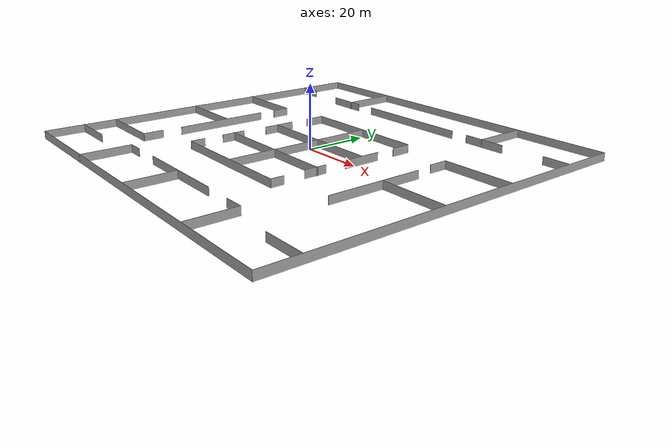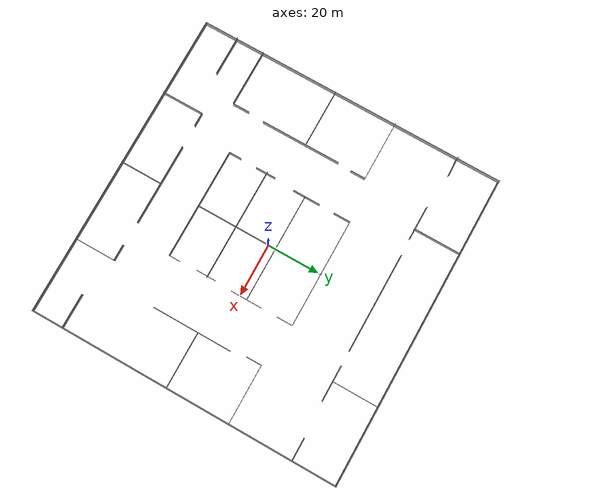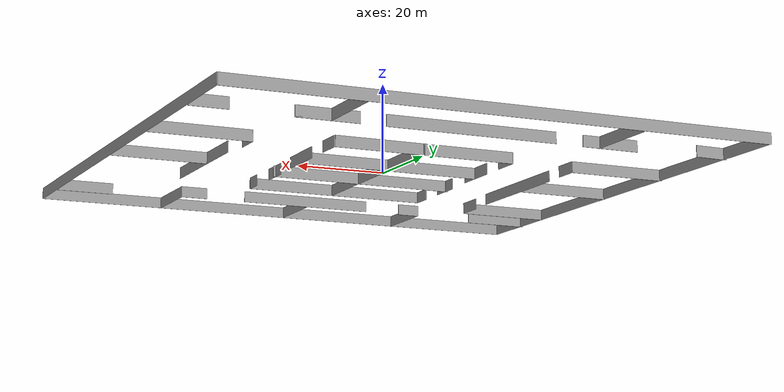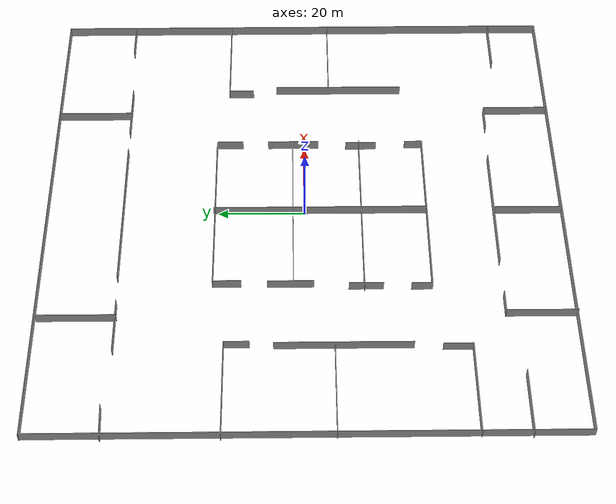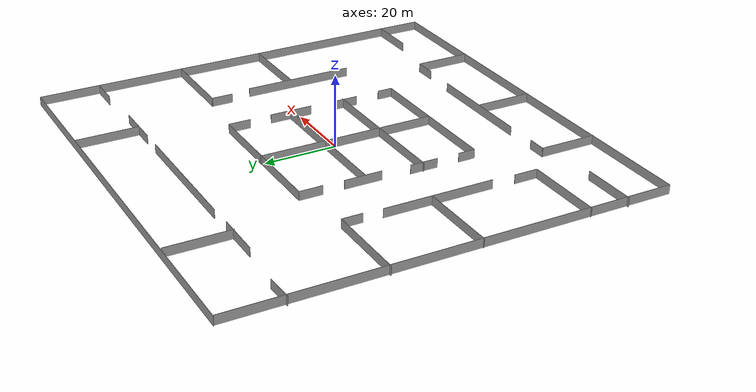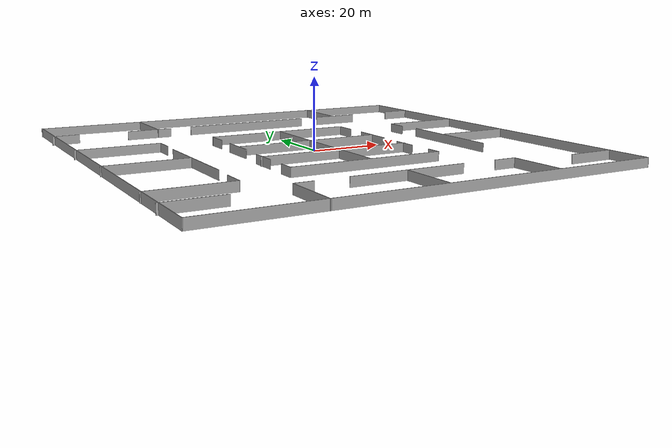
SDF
<?xml version='1.0'?>
<sdf version='1.6'>
  <model name='model'>
    <pose frame=''>-0.123457 -0.043402 0 0 -0 0</pose>
    <link name='Wall_0'>
      <collision name='Wall_0_Collision'>
        <geometry>
          <box>
            <size>119.25 0.15 2.5</size>
          </box>
        </geometry>
        <pose frame=''>0 0 1.25 0 -0 0</pose>
      </collision>
      <visual name='Wall_0_Visual'>
        <pose frame=''>0 0 1.25 0 -0 0</pose>
        <geometry>
          <box>
            <size>119.25 0.15 2.5</size>
          </box>
        </geometry>
        <material>
          <script>
            <uri>file://media/materials/scripts/gazebo.material</uri>
            <name>Gazebo/Grey</name>
          </script>
          <ambient>1 1 1 1</ambient>
        </material>
      </visual>
      <pose frame=''>-59.3614 0.107463 0 0 0 -1.5708</pose>
    </link>
    <link name='Wall_1'>
      <collision name='Wall_1_Collision'>
        <geometry>
          <box>
            <size>119.5 0.15 2.5</size>
          </box>
        </geometry>
        <pose frame=''>0 0 1.25 0 -0 0</pose>
      </collision>
      <visual name='Wall_1_Visual'>
        <pose frame=''>0 0 1.25 0 -0 0</pose>
        <geometry>
          <box>
            <size>119.5 0.15 2.5</size>
          </box>
        </geometry>
        <material>
          <script>
            <uri>file://media/materials/scripts/gazebo.material</uri>
            <name>Gazebo/Grey</name>
          </script>
          <ambient>1 1 1 1</ambient>
        </material>
      </visual>
      <pose frame=''>0.313632 -59.4425 0 0 -0 0</pose>
    </link>
    <link name='Wall_10'>
      <collision name='Wall_10_Collision'>
        <geometry>
          <box>
            <size>4.25 0.15 2.5</size>
          </box>
        </geometry>
        <pose frame=''>0 0 1.25 0 -0 0</pose>
      </collision>
      <visual name='Wall_10_Visual'>
        <pose frame=''>0 0 1.25 0 -0 0</pose>
        <geometry>
          <box>
            <size>4.25 0.15 2.5</size>
          </box>
        </geometry>
        <material>
          <script>
            <uri>file://media/materials/scripts/gazebo.material</uri>
            <name>Gazebo/Grey</name>
          </script>
          <ambient>1 1 1 1</ambient>
        </material>
      </visual>
      <pose frame=''>20.3445 -26.0989 0 0 -0 1.5708</pose>
    </link>
    <link name='Wall_12'>
      <collision name='Wall_12_Collision'>
        <geometry>
          <box>
            <size>42.762 0.15 2.5</size>
          </box>
        </geometry>
        <pose frame=''>0 0 1.25 0 -0 0</pose>
      </collision>
      <visual name='Wall_12_Visual'>
        <pose frame=''>0 0 1.25 0 -0 0</pose>
        <geometry>
          <box>
            <size>42.762 0.15 2.5</size>
          </box>
        </geometry>
        <material>
          <script>
            <uri>file://media/materials/scripts/gazebo.material</uri>
            <name>Gazebo/Grey</name>
          </script>
          <ambient>1 1 1 1</ambient>
        </material>
      </visual>
      <pose frame=''>-0.756543 -13.0266 0 0 -0 0</pose>
    </link>
    <link name='Wall_14'>
      <collision name='Wall_14_Collision'>
        <geometry>
          <box>
            <size>7.75 0.15 2.5</size>
          </box>
        </geometry>
        <pose frame=''>0 0 1.25 0 -0 0</pose>
      </collision>
      <visual name='Wall_14_Visual'>
        <pose frame=''>0 0 1.25 0 -0 0</pose>
        <geometry>
          <box>
            <size>7.75 0.15 2.5</size>
          </box>
        </geometry>
        <material>
          <script>
            <uri>file://media/materials/scripts/gazebo.material</uri>
            <name>Gazebo/Grey</name>
          </script>
          <ambient>1 1 1 1</ambient>
        </material>
      </visual>
      <pose frame=''>-21.6217 -13.4008 0 0 0 -1.5708</pose>
    </link>
    <link name='Wall_16'>
      <collision name='Wall_16_Collision'>
        <geometry>
          <box>
            <size>7.25 0.15 2.5</size>
          </box>
        </geometry>
        <pose frame=''>0 0 1.25 0 -0 0</pose>
      </collision>
      <visual name='Wall_16_Visual'>
        <pose frame=''>0 0 1.25 0 -0 0</pose>
        <geometry>
          <box>
            <size>7.25 0.15 2.5</size>
          </box>
        </geometry>
        <material>
          <script>
            <uri>file://media/materials/scripts/gazebo.material</uri>
            <name>Gazebo/Grey</name>
          </script>
          <ambient>1 1 1 1</ambient>
        </material>
      </visual>
      <pose frame=''>20.1003 -13.5026 0 0 0 -1.5708</pose>
    </link>
    <link name='Wall_19'>
      <collision name='Wall_19_Collision'>
        <geometry>
          <box>
            <size>41.432 0.15 2.5</size>
          </box>
        </geometry>
        <pose frame=''>0 0 1.25 0 -0 0</pose>
      </collision>
      <visual name='Wall_19_Visual'>
        <pose frame=''>0 0 1.25 0 -0 0</pose>
        <geometry>
          <box>
            <size>41.432 0.15 2.5</size>
          </box>
        </geometry>
        <material>
          <script>
            <uri>file://media/materials/scripts/gazebo.material</uri>
            <name>Gazebo/Grey</name>
          </script>
          <ambient>1 1 1 1</ambient>
        </material>
      </visual>
      <pose frame=''>-0.235543 2.8384 0 0 -0 3.14159</pose>
    </link>
    <link name='Wall_2'>
      <collision name='Wall_2_Collision'>
        <geometry>
          <box>
            <size>119.25 0.15 2.5</size>
          </box>
        </geometry>
        <pose frame=''>0 0 1.25 0 -0 0</pose>
      </collision>
      <visual name='Wall_2_Visual'>
        <pose frame=''>0 0 1.25 0 -0 0</pose>
        <geometry>
          <box>
            <size>119.25 0.15 2.5</size>
          </box>
        </geometry>
        <material>
          <script>
            <uri>file://media/materials/scripts/gazebo.material</uri>
            <name>Gazebo/Grey</name>
          </script>
          <ambient>1 1 1 1</ambient>
        </material>
      </visual>
      <pose frame=''>59.9886 0.107463 0 0 -0 1.5708</pose>
    </link>
    <link name='Wall_21'>
      <collision name='Wall_21_Collision'>
        <geometry>
          <box>
            <size>10.5 0.15 2.5</size>
          </box>
        </geometry>
        <pose frame=''>0 0 1.25 0 -0 0</pose>
      </collision>
      <visual name='Wall_21_Visual'>
        <pose frame=''>0 0 1.25 0 -0 0</pose>
        <geometry>
          <box>
            <size>10.5 0.15 2.5</size>
          </box>
        </geometry>
        <material>
          <script>
            <uri>file://media/materials/scripts/gazebo.material</uri>
            <name>Gazebo/Grey</name>
          </script>
          <ambient>1 1 1 1</ambient>
        </material>
      </visual>
      <pose frame=''>-20.9646 3.43311 0 0 0 -1.5708</pose>
    </link>
    <link name='Wall_23'>
      <collision name='Wall_23_Collision'>
        <geometry>
          <box>
            <size>12 0.15 2.5</size>
          </box>
        </geometry>
        <pose frame=''>0 0 1.25 0 -0 0</pose>
      </collision>
      <visual name='Wall_23_Visual'>
        <pose frame=''>0 0 1.25 0 -0 0</pose>
        <geometry>
          <box>
            <size>12 0.15 2.5</size>
          </box>
        </geometry>
        <material>
          <script>
            <uri>file://media/materials/scripts/gazebo.material</uri>
            <name>Gazebo/Grey</name>
          </script>
          <ambient>1 1 1 1</ambient>
        </material>
      </visual>
      <pose frame=''>20.4759 2.68311 0 0 0 -1.5708</pose>
    </link>
    <link name='Wall_25'>
      <collision name='Wall_25_Collision'>
        <geometry>
          <box>
            <size>41.268 0.15 2.5</size>
          </box>
        </geometry>
        <pose frame=''>0 0 1.25 0 -0 0</pose>
      </collision>
      <visual name='Wall_25_Visual'>
        <pose frame=''>0 0 1.25 0 -0 0</pose>
        <geometry>
          <box>
            <size>41.268 0.15 2.5</size>
          </box>
        </geometry>
        <material>
          <script>
            <uri>file://media/materials/scripts/gazebo.material</uri>
            <name>Gazebo/Grey</name>
          </script>
          <ambient>1 1 1 1</ambient>
        </material>
      </visual>
      <pose frame=''>-0.262543 20.9014 0 0 -0 0</pose>
    </link>
    <link name='Wall_27'>
      <collision name='Wall_27_Collision'>
        <geometry>
          <box>
            <size>6 0.15 2.5</size>
          </box>
        </geometry>
        <pose frame=''>0 0 1.25 0 -0 0</pose>
      </collision>
      <visual name='Wall_27_Visual'>
        <pose frame=''>0 0 1.25 0 -0 0</pose>
        <geometry>
          <box>
            <size>6 0.15 2.5</size>
          </box>
        </geometry>
        <material>
          <script>
            <uri>file://media/materials/scripts/gazebo.material</uri>
            <name>Gazebo/Grey</name>
          </script>
          <ambient>1 1 1 1</ambient>
        </material>
      </visual>
      <pose frame=''>20.4784 17.6949 0 0 0 -1.5708</pose>
    </link>
    <link name='Wall_3'>
      <collision name='Wall_3_Collision'>
        <geometry>
          <box>
            <size>119.75 0.15 2.5</size>
          </box>
        </geometry>
        <pose frame=''>0 0 1.25 0 -0 0</pose>
      </collision>
      <visual name='Wall_3_Visual'>
        <pose frame=''>0 0 1.25 0 -0 0</pose>
        <geometry>
          <box>
            <size>119.75 0.15 2.5</size>
          </box>
        </geometry>
        <material>
          <script>
            <uri>file://media/materials/scripts/gazebo.material</uri>
            <name>Gazebo/Grey</name>
          </script>
          <ambient>1 1 1 1</ambient>
        </material>
      </visual>
      <pose frame=''>0.188632 59.6575 0 0 -0 3.14159</pose>
    </link>
    <link name='Wall_30'>
      <collision name='Wall_30_Collision'>
        <geometry>
          <box>
            <size>6.5 0.15 2.5</size>
          </box>
        </geometry>
        <pose frame=''>0 0 1.25 0 -0 0</pose>
      </collision>
      <visual name='Wall_30_Visual'>
        <pose frame=''>0 0 1.25 0 -0 0</pose>
        <geometry>
          <box>
            <size>6.5 0.15 2.5</size>
          </box>
        </geometry>
        <material>
          <script>
            <uri>file://media/materials/scripts/gazebo.material</uri>
            <name>Gazebo/Grey</name>
          </script>
          <ambient>1 1 1 1</ambient>
        </material>
      </visual>
      <pose frame=''>-20.8215 17.7264 0 0 0 -1.5708</pose>
    </link>
    <link name='Wall_33'>
      <collision name='Wall_33_Collision'>
        <geometry>
          <box>
            <size>23 0.15 2.5</size>
          </box>
        </geometry>
        <pose frame=''>0 0 1.25 0 -0 0</pose>
      </collision>
      <visual name='Wall_33_Visual'>
        <pose frame=''>0 0 1.25 0 -0 0</pose>
        <geometry>
          <box>
            <size>23 0.15 2.5</size>
          </box>
        </geometry>
        <material>
          <script>
            <uri>file://media/materials/scripts/gazebo.material</uri>
            <name>Gazebo/Grey</name>
          </script>
          <ambient>1 1 1 1</ambient>
        </material>
      </visual>
      <pose frame=''>-48.4422 18.0663 0 0 -0 0</pose>
    </link>
    <link name='Wall_34'>
      <collision name='Wall_34_Collision'>
        <geometry>
          <box>
            <size>5.75 0.15 2.5</size>
          </box>
        </geometry>
        <pose frame=''>0 0 1.25 0 -0 0</pose>
      </collision>
      <visual name='Wall_34_Visual'>
        <pose frame=''>0 0 1.25 0 -0 0</pose>
        <geometry>
          <box>
            <size>5.75 0.15 2.5</size>
          </box>
        </geometry>
        <material>
          <script>
            <uri>file://media/materials/scripts/gazebo.material</uri>
            <name>Gazebo/Grey</name>
          </script>
          <ambient>1 1 1 1</ambient>
        </material>
      </visual>
      <pose frame=''>-37.0172 15.2663 0 0 0 -1.5708</pose>
    </link>
    <link name='Wall_36'>
      <collision name='Wall_36_Collision'>
        <geometry>
          <box>
            <size>22.25 0.15 2.5</size>
          </box>
        </geometry>
        <pose frame=''>0 0 1.25 0 -0 0</pose>
      </collision>
      <visual name='Wall_36_Visual'>
        <pose frame=''>0 0 1.25 0 -0 0</pose>
        <geometry>
          <box>
            <size>22.25 0.15 2.5</size>
          </box>
        </geometry>
        <material>
          <script>
            <uri>file://media/materials/scripts/gazebo.material</uri>
            <name>Gazebo/Grey</name>
          </script>
          <ambient>1 1 1 1</ambient>
        </material>
      </visual>
      <pose frame=''>-48.5697 -6.10432 0 0 -0 0</pose>
    </link>
    <link name='Wall_38'>
      <collision name='Wall_38_Collision'>
        <geometry>
          <box>
            <size>30.5 0.15 2.5</size>
          </box>
        </geometry>
        <pose frame=''>0 0 1.25 0 -0 0</pose>
      </collision>
      <visual name='Wall_38_Visual'>
        <pose frame=''>0 0 1.25 0 -0 0</pose>
        <geometry>
          <box>
            <size>30.5 0.15 2.5</size>
          </box>
        </geometry>
        <material>
          <script>
            <uri>file://media/materials/scripts/gazebo.material</uri>
            <name>Gazebo/Grey</name>
          </script>
          <ambient>1 1 1 1</ambient>
        </material>
      </visual>
      <pose frame=''>-37.3691 -8.00989 0 0 0 -1.5708</pose>
    </link>
    <link name='Wall_43'>
      <collision name='Wall_43_Collision'>
        <geometry>
          <box>
            <size>15.25 0.15 2.5</size>
          </box>
        </geometry>
        <pose frame=''>0 0 1.25 0 -0 0</pose>
      </collision>
      <visual name='Wall_43_Visual'>
        <pose frame=''>0 0 1.25 0 -0 0</pose>
        <geometry>
          <box>
            <size>15.25 0.15 2.5</size>
          </box>
        </geometry>
        <material>
          <script>
            <uri>file://media/materials/scripts/gazebo.material</uri>
            <name>Gazebo/Grey</name>
          </script>
          <ambient>1 1 1 1</ambient>
        </material>
      </visual>
      <pose frame=''>-52.3124 -46.7217 0 0 -0 0</pose>
    </link>
    <link name='Wall_46'>
      <collision name='Wall_46_Collision'>
        <geometry>
          <box>
            <size>21.75 0.15 2.5</size>
          </box>
        </geometry>
        <pose frame=''>0 0 1.25 0 -0 0</pose>
      </collision>
      <visual name='Wall_46_Visual'>
        <pose frame=''>0 0 1.25 0 -0 0</pose>
        <geometry>
          <box>
            <size>21.75 0.15 2.5</size>
          </box>
        </geometry>
        <material>
          <script>
            <uri>file://media/materials/scripts/gazebo.material</uri>
            <name>Gazebo/Grey</name>
          </script>
          <ambient>1 1 1 1</ambient>
        </material>
      </visual>
      <pose frame=''>-48.8419 -35.9288 0 0 -0 0</pose>
    </link>
    <link name='Wall_48'>
      <collision name='Wall_48_Collision'>
        <geometry>
          <box>
            <size>6.5 0.15 2.5</size>
          </box>
        </geometry>
        <pose frame=''>0 0 1.25 0 -0 0</pose>
      </collision>
      <visual name='Wall_48_Visual'>
        <pose frame=''>0 0 1.25 0 -0 0</pose>
        <geometry>
          <box>
            <size>6.5 0.15 2.5</size>
          </box>
        </geometry>
        <material>
          <script>
            <uri>file://media/materials/scripts/gazebo.material</uri>
            <name>Gazebo/Grey</name>
          </script>
          <ambient>1 1 1 1</ambient>
        </material>
      </visual>
      <pose frame=''>-37.8768 -32.6309 0 0 0 -1.5708</pose>
    </link>
    <link name='Wall_52'>
      <collision name='Wall_52_Collision'>
        <geometry>
          <box>
            <size>30.571 0.15 2.5</size>
          </box>
        </geometry>
        <pose frame=''>0 0 1.25 0 -0 0</pose>
      </collision>
      <visual name='Wall_52_Visual'>
        <pose frame=''>0 0 1.25 0 -0 0</pose>
        <geometry>
          <box>
            <size>30.571 0.15 2.5</size>
          </box>
        </geometry>
        <material>
          <script>
            <uri>file://media/materials/scripts/gazebo.material</uri>
            <name>Gazebo/Grey</name>
          </script>
          <ambient>1 1 1 1</ambient>
        </material>
      </visual>
      <pose frame=''>38.5075 -8.5461 0 0 0 -1.5708</pose>
    </link>
    <link name='Wall_54'>
      <collision name='Wall_54_Collision'>
        <geometry>
          <box>
            <size>21.25 0.15 2.5</size>
          </box>
        </geometry>
        <pose frame=''>0 0 1.25 0 -0 0</pose>
      </collision>
      <visual name='Wall_54_Visual'>
        <pose frame=''>0 0 1.25 0 -0 0</pose>
        <geometry>
          <box>
            <size>21.25 0.15 2.5</size>
          </box>
        </geometry>
        <material>
          <script>
            <uri>file://media/materials/scripts/gazebo.material</uri>
            <name>Gazebo/Grey</name>
          </script>
          <ambient>1 1 1 1</ambient>
        </material>
      </visual>
      <pose frame=''>49.1909 -6.12624 0 0 -0 0</pose>
    </link>
    <link name='Wall_56'>
      <collision name='Wall_56_Collision'>
        <geometry>
          <box>
            <size>6 0.15 2.5</size>
          </box>
        </geometry>
        <pose frame=''>0 0 1.25 0 -0 0</pose>
      </collision>
      <visual name='Wall_56_Visual'>
        <pose frame=''>0 0 1.25 0 -0 0</pose>
        <geometry>
          <box>
            <size>6 0.15 2.5</size>
          </box>
        </geometry>
        <material>
          <script>
            <uri>file://media/materials/scripts/gazebo.material</uri>
            <name>Gazebo/Grey</name>
          </script>
          <ambient>1 1 1 1</ambient>
        </material>
      </visual>
      <pose frame=''>37.4357 15.3905 0 0 0 -1.5708</pose>
    </link>
    <link name='Wall_58'>
      <collision name='Wall_58_Collision'>
        <geometry>
          <box>
            <size>22.5 0.15 2.5</size>
          </box>
        </geometry>
        <pose frame=''>0 0 1.25 0 -0 0</pose>
      </collision>
      <visual name='Wall_58_Visual'>
        <pose frame=''>0 0 1.25 0 -0 0</pose>
        <geometry>
          <box>
            <size>22.5 0.15 2.5</size>
          </box>
        </geometry>
        <material>
          <script>
            <uri>file://media/materials/scripts/gazebo.material</uri>
            <name>Gazebo/Grey</name>
          </script>
          <ambient>1 1 1 1</ambient>
        </material>
      </visual>
      <pose frame=''>48.6107 18.3155 0 0 -0 0</pose>
    </link>
    <link name='Wall_6'>
      <collision name='Wall_6_Collision'>
        <geometry>
          <box>
            <size>49.25 0.15 2.5</size>
          </box>
        </geometry>
        <pose frame=''>0 0 1.25 0 -0 0</pose>
      </collision>
      <visual name='Wall_6_Visual'>
        <pose frame=''>0 0 1.25 0 -0 0</pose>
        <geometry>
          <box>
            <size>49.25 0.15 2.5</size>
          </box>
        </geometry>
        <material>
          <script>
            <uri>file://media/materials/scripts/gazebo.material</uri>
            <name>Gazebo/Grey</name>
          </script>
          <ambient>1 1 1 1</ambient>
        </material>
      </visual>
      <pose frame=''>0.184231 -3.39039 0 0 0 -1.5708</pose>
    </link>
    <link name='Wall_61'>
      <collision name='Wall_61_Collision'>
        <geometry>
          <box>
            <size>38 0.15 2.5</size>
          </box>
        </geometry>
        <pose frame=''>0 0 1.25 0 -0 0</pose>
      </collision>
      <visual name='Wall_61_Visual'>
        <pose frame=''>0 0 1.25 0 -0 0</pose>
        <geometry>
          <box>
            <size>38 0.15 2.5</size>
          </box>
        </geometry>
        <material>
          <script>
            <uri>file://media/materials/scripts/gazebo.material</uri>
            <name>Gazebo/Grey</name>
          </script>
          <ambient>1 1 1 1</ambient>
        </material>
      </visual>
      <pose frame=''>-0.414369 42.1378 0 0 -0 0</pose>
    </link>
    <link name='Wall_63'>
      <collision name='Wall_63_Collision'>
        <geometry>
          <box>
            <size>17.7128 0.15 2.5</size>
          </box>
        </geometry>
        <pose frame=''>0 0 1.25 0 -0 0</pose>
      </collision>
      <visual name='Wall_63_Visual'>
        <pose frame=''>0 0 1.25 0 -0 0</pose>
        <geometry>
          <box>
            <size>17.7128 0.15 2.5</size>
          </box>
        </geometry>
        <material>
          <script>
            <uri>file://media/materials/scripts/gazebo.material</uri>
            <name>Gazebo/Grey</name>
          </script>
          <ambient>1 1 1 1</ambient>
        </material>
      </visual>
      <pose frame=''>-29.7705 50.4622 0 0 0 -1.5708</pose>
    </link>
    <link name='Wall_67'>
      <collision name='Wall_67_Collision'>
        <geometry>
          <box>
            <size>13 0.15 2.5</size>
          </box>
        </geometry>
        <pose frame=''>0 0 1.25 0 -0 0</pose>
      </collision>
      <visual name='Wall_67_Visual'>
        <pose frame=''>0 0 1.25 0 -0 0</pose>
        <geometry>
          <box>
            <size>13 0.15 2.5</size>
          </box>
        </geometry>
        <material>
          <script>
            <uri>file://media/materials/scripts/gazebo.material</uri>
            <name>Gazebo/Grey</name>
          </script>
          <ambient>1 1 1 1</ambient>
        </material>
      </visual>
      <pose frame=''>-32.2918 41.9224 0 0 -0 0</pose>
    </link>
    <link name='Wall_73'>
      <collision name='Wall_73_Collision'>
        <geometry>
          <box>
            <size>7.5977 0.15 2.5</size>
          </box>
        </geometry>
        <pose frame=''>0 0 1.25 0 -0 0</pose>
      </collision>
      <visual name='Wall_73_Visual'>
        <pose frame=''>0 0 1.25 0 -0 0</pose>
        <geometry>
          <box>
            <size>7.5977 0.15 2.5</size>
          </box>
        </geometry>
        <material>
          <script>
            <uri>file://media/materials/scripts/gazebo.material</uri>
            <name>Gazebo/Grey</name>
          </script>
          <ambient>1 1 1 1</ambient>
        </material>
      </visual>
      <pose frame=''>-56.2646 43.1601 0 0 -0 0.037278</pose>
    </link>
    <link name='Wall_75'>
      <collision name='Wall_75_Collision'>
        <geometry>
          <box>
            <size>8.25 0.15 2.5</size>
          </box>
        </geometry>
        <pose frame=''>0 0 1.25 0 -0 0</pose>
      </collision>
      <visual name='Wall_75_Visual'>
        <pose frame=''>0 0 1.25 0 -0 0</pose>
        <geometry>
          <box>
            <size>8.25 0.15 2.5</size>
          </box>
        </geometry>
        <material>
          <script>
            <uri>file://media/materials/scripts/gazebo.material</uri>
            <name>Gazebo/Grey</name>
          </script>
          <ambient>1 1 1 1</ambient>
        </material>
      </visual>
      <pose frame=''>55.5542 42.8554 0 0 -0 0</pose>
    </link>
    <link name='Wall_77'>
      <collision name='Wall_77_Collision'>
        <geometry>
          <box>
            <size>17.5 0.15 2.5</size>
          </box>
        </geometry>
        <pose frame=''>0 0 1.25 0 -0 0</pose>
      </collision>
      <visual name='Wall_77_Visual'>
        <pose frame=''>0 0 1.25 0 -0 0</pose>
        <geometry>
          <box>
            <size>17.5 0.15 2.5</size>
          </box>
        </geometry>
        <material>
          <script>
            <uri>file://media/materials/scripts/gazebo.material</uri>
            <name>Gazebo/Grey</name>
          </script>
          <ambient>1 1 1 1</ambient>
        </material>
      </visual>
      <pose frame=''>30.2059 50.855 0 0 0 -1.5708</pose>
    </link>
    <link name='Wall_78'>
      <collision name='Wall_78_Collision'>
        <geometry>
          <box>
            <size>7.75 0.15 2.5</size>
          </box>
        </geometry>
        <pose frame=''>0 0 1.25 0 -0 0</pose>
      </collision>
      <visual name='Wall_78_Visual'>
        <pose frame=''>0 0 1.25 0 -0 0</pose>
        <geometry>
          <box>
            <size>7.75 0.15 2.5</size>
          </box>
        </geometry>
        <material>
          <script>
            <uri>file://media/materials/scripts/gazebo.material</uri>
            <name>Gazebo/Grey</name>
          </script>
          <ambient>1 1 1 1</ambient>
        </material>
      </visual>
      <pose frame=''>34.0059 42.18 0 0 -0 0</pose>
    </link>
    <link name='Wall_79'>
      <collision name='Wall_79_Collision'>
        <geometry>
          <box>
            <size>13.75 0.15 2.5</size>
          </box>
        </geometry>
        <pose frame=''>0 0 1.25 0 -0 0</pose>
      </collision>
      <visual name='Wall_79_Visual'>
        <pose frame=''>0 0 1.25 0 -0 0</pose>
        <geometry>
          <box>
            <size>13.75 0.15 2.5</size>
          </box>
        </geometry>
        <material>
          <script>
            <uri>file://media/materials/scripts/gazebo.material</uri>
            <name>Gazebo/Grey</name>
          </script>
          <ambient>1 1 1 1</ambient>
        </material>
      </visual>
      <pose frame=''>31.0059 42.18 0 0 -0 3.14159</pose>
    </link>
    <link name='Wall_8'>
      <collision name='Wall_8_Collision'>
        <geometry>
          <box>
            <size>4.75 0.15 2.5</size>
          </box>
        </geometry>
        <pose frame=''>0 0 1.25 0 -0 0</pose>
      </collision>
      <visual name='Wall_8_Visual'>
        <pose frame=''>0 0 1.25 0 -0 0</pose>
        <geometry>
          <box>
            <size>4.75 0.15 2.5</size>
          </box>
        </geometry>
        <material>
          <script>
            <uri>file://media/materials/scripts/gazebo.material</uri>
            <name>Gazebo/Grey</name>
          </script>
          <ambient>1 1 1 1</ambient>
        </material>
      </visual>
      <pose frame=''>-21.7555 -25.8489 0 0 0 -1.5708</pose>
    </link>
    <link name='Wall_81'>
      <collision name='Wall_81_Collision'>
        <geometry>
          <box>
            <size>31.25 0.15 2.5</size>
          </box>
        </geometry>
        <pose frame=''>0 0 1.25 0 -0 0</pose>
      </collision>
      <visual name='Wall_81_Visual'>
        <pose frame=''>0 0 1.25 0 -0 0</pose>
        <geometry>
          <box>
            <size>31.25 0.15 2.5</size>
          </box>
        </geometry>
        <material>
          <script>
            <uri>file://media/materials/scripts/gazebo.material</uri>
            <name>Gazebo/Grey</name>
          </script>
          <ambient>1 1 1 1</ambient>
        </material>
      </visual>
      <pose frame=''>0.263454 -43.7009 0 0 -0 0</pose>
    </link>
    <link name='Wall_83'>
      <collision name='Wall_83_Collision'>
        <geometry>
          <box>
            <size>15.5 0.15 2.5</size>
          </box>
        </geometry>
        <pose frame=''>0 0 1.25 0 -0 0</pose>
      </collision>
      <visual name='Wall_83_Visual'>
        <pose frame=''>0 0 1.25 0 -0 0</pose>
        <geometry>
          <box>
            <size>15.5 0.15 2.5</size>
          </box>
        </geometry>
        <material>
          <script>
            <uri>file://media/materials/scripts/gazebo.material</uri>
            <name>Gazebo/Grey</name>
          </script>
          <ambient>1 1 1 1</ambient>
        </material>
      </visual>
      <pose frame=''>-0.162339 -51.6703 0 0 0 -1.5708</pose>
    </link>
    <link name='Wall_85'>
      <collision name='Wall_85_Collision'>
        <geometry>
          <box>
            <size>6.25 0.15 2.5</size>
          </box>
        </geometry>
        <pose frame=''>0 0 1.25 0 -0 0</pose>
      </collision>
      <visual name='Wall_85_Visual'>
        <pose frame=''>0 0 1.25 0 -0 0</pose>
        <geometry>
          <box>
            <size>6.25 0.15 2.5</size>
          </box>
        </geometry>
        <material>
          <script>
            <uri>file://media/materials/scripts/gazebo.material</uri>
            <name>Gazebo/Grey</name>
          </script>
          <ambient>1 1 1 1</ambient>
        </material>
      </visual>
      <pose frame=''>28.2049 -44.0008 0 0 -0 0</pose>
    </link>
    <link name='Wall_86'>
      <collision name='Wall_86_Collision'>
        <geometry>
          <box>
            <size>15.5 0.15 2.5</size>
          </box>
        </geometry>
        <pose frame=''>0 0 1.25 0 -0 0</pose>
      </collision>
      <visual name='Wall_86_Visual'>
        <pose frame=''>0 0 1.25 0 -0 0</pose>
        <geometry>
          <box>
            <size>15.5 0.15 2.5</size>
          </box>
        </geometry>
        <material>
          <script>
            <uri>file://media/materials/scripts/gazebo.material</uri>
            <name>Gazebo/Grey</name>
          </script>
          <ambient>1 1 1 1</ambient>
        </material>
      </visual>
      <pose frame=''>31.2549 -51.6758 0 0 0 -1.5708</pose>
    </link>
    <link name='Wall_88'>
      <collision name='Wall_88_Collision'>
        <geometry>
          <box>
            <size>5.25 0.15 2.5</size>
          </box>
        </geometry>
        <pose frame=''>0 0 1.25 0 -0 0</pose>
      </collision>
      <visual name='Wall_88_Visual'>
        <pose frame=''>0 0 1.25 0 -0 0</pose>
        <geometry>
          <box>
            <size>5.25 0.15 2.5</size>
          </box>
        </geometry>
        <material>
          <script>
            <uri>file://media/materials/scripts/gazebo.material</uri>
            <name>Gazebo/Grey</name>
          </script>
          <ambient>1 1 1 1</ambient>
        </material>
      </visual>
      <pose frame=''>-26.7287 -43.8075 0 0 -0 3.14159</pose>
    </link>
    <link name='Wall_89'>
      <collision name='Wall_89_Collision'>
        <geometry>
          <box>
            <size>16 0.15 2.5</size>
          </box>
        </geometry>
        <pose frame=''>0 0 1.25 0 -0 0</pose>
      </collision>
      <visual name='Wall_89_Visual'>
        <pose frame=''>0 0 1.25 0 -0 0</pose>
        <geometry>
          <box>
            <size>16 0.15 2.5</size>
          </box>
        </geometry>
        <material>
          <script>
            <uri>file://media/materials/scripts/gazebo.material</uri>
            <name>Gazebo/Grey</name>
          </script>
          <ambient>1 1 1 1</ambient>
        </material>
      </visual>
      <pose frame=''>-29.2787 -51.7325 0 0 0 -1.5708</pose>
    </link>
    <link name='Wall_9'>
      <collision name='Wall_9_Collision'>
        <geometry>
          <box>
            <size>42.25 0.15 2.5</size>
          </box>
        </geometry>
        <pose frame=''>0 0 1.25 0 -0 0</pose>
      </collision>
      <visual name='Wall_9_Visual'>
        <pose frame=''>0 0 1.25 0 -0 0</pose>
        <geometry>
          <box>
            <size>42.25 0.15 2.5</size>
          </box>
        </geometry>
        <material>
          <script>
            <uri>file://media/materials/scripts/gazebo.material</uri>
            <name>Gazebo/Grey</name>
          </script>
          <ambient>1 1 1 1</ambient>
        </material>
      </visual>
      <pose frame=''>-0.705462 -28.1489 0 0 -0 0</pose>
    </link>
    <link name='Wall_91'>
      <collision name='Wall_91_Collision'>
        <geometry>
          <box>
            <size>13 0.15 2.5</size>
          </box>
        </geometry>
        <pose frame=''>0 0 1.25 0 -0 0</pose>
      </collision>
      <visual name='Wall_91_Visual'>
        <pose frame=''>0 0 1.25 0 -0 0</pose>
        <geometry>
          <box>
            <size>13 0.15 2.5</size>
          </box>
        </geometry>
        <material>
          <script>
            <uri>file://media/materials/scripts/gazebo.material</uri>
            <name>Gazebo/Grey</name>
          </script>
          <ambient>1 1 1 1</ambient>
        </material>
      </visual>
      <pose frame=''>53.3141 -47.4948 0 0 -0 0</pose>
    </link>
    <static>1</static>
  </model>
</sdf>
